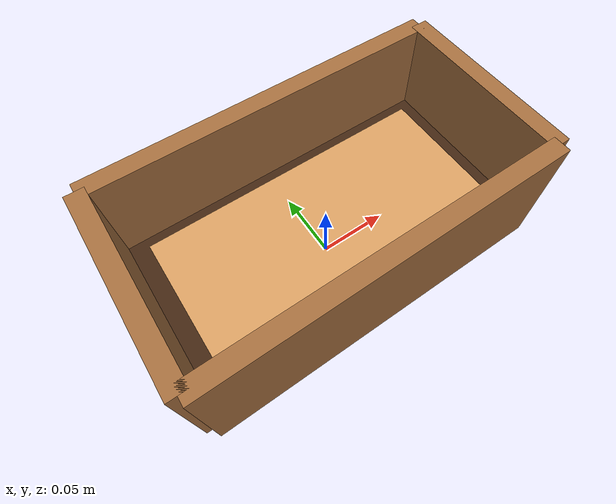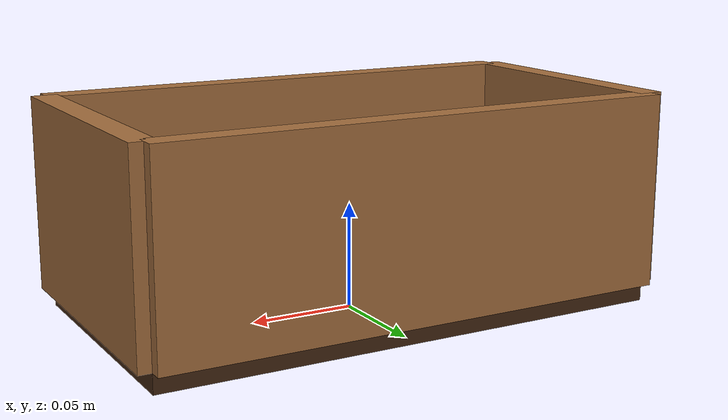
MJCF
<mujoco model="utensil_box">
  <worldbody>
    <body>
      <body name="object">
        <site name="contain_region" type="box" pos="0 0 0.058"
              quat="1 0 0 0" size="0.102 0.048 0.036" rgba="0 0 0 0"/>
        <geom name="wood_bottom" type="box" pos="0 0 0.019"
              size="0.122 0.064 0.017" rgba="0.26 0.15 0.07 1"
              density="5000" friction="1.5 0.02 0.001"
              solimp="0.99 0.99 0.001" solref="0.005 1" group="0"/>
        <geom name="wood_bottom_visual" type="box" pos="0 0 0.019"
              size="0.122 0.064 0.017" rgba="0.26 0.15 0.07 1"
              contype="0" conaffinity="0" group="1"/>
        <geom name="inner_floor_visual" type="box" pos="0 0 0.038"
              size="0.104 0.048 0.004" rgba="0.84 0.62 0.38 1"
              contype="0" conaffinity="0" group="1"/>
        <geom name="left_wall" type="box" pos="-0.122 0 0.056"
              size="0.006 0.064 0.045" rgba="0.64 0.43 0.24 1"
              density="5000" friction="1.5 0.02 0.001"
              solimp="0.99 0.99 0.001" solref="0.005 1" group="0"/>
        <geom name="right_wall" type="box" pos="0.122 0 0.056"
              size="0.006 0.064 0.045" rgba="0.64 0.43 0.24 1"
              density="5000" friction="1.5 0.02 0.001"
              solimp="0.99 0.99 0.001" solref="0.005 1" group="0"/>
        <geom name="front_wall" type="box" pos="0 -0.064 0.056"
              size="0.122 0.006 0.045" rgba="0.64 0.43 0.24 1"
              density="5000" friction="1.5 0.02 0.001"
              solimp="0.99 0.99 0.001" solref="0.005 1" group="0"/>
        <geom name="back_wall" type="box" pos="0 0.064 0.056"
              size="0.122 0.006 0.045" rgba="0.64 0.43 0.24 1"
              density="5000" friction="1.5 0.02 0.001"
              solimp="0.99 0.99 0.001" solref="0.005 1" group="0"/>
        <geom name="left_wall_visual" type="box" pos="-0.122 0 0.056"
              size="0.006 0.064 0.045" rgba="0.64 0.43 0.24 1"
              contype="0" conaffinity="0" group="1"/>
        <geom name="right_wall_visual" type="box" pos="0.122 0 0.056"
              size="0.006 0.064 0.045" rgba="0.64 0.43 0.24 1"
              contype="0" conaffinity="0" group="1"/>
        <geom name="front_wall_visual" type="box" pos="0 -0.064 0.056"
              size="0.122 0.006 0.045" rgba="0.64 0.43 0.24 1"
              contype="0" conaffinity="0" group="1"/>
        <geom name="back_wall_visual" type="box" pos="0 0.064 0.056"
              size="0.122 0.006 0.045" rgba="0.64 0.43 0.24 1"
              contype="0" conaffinity="0" group="1"/>
      </body>
      <site name="bottom_site" pos="0 0 -0.004" size="0.003" rgba="0 0 0 0"/>
      <site name="top_site" pos="0 0 0.102" size="0.003" rgba="0 0 0 0"/>
      <site name="horizontal_radius_site" pos="0.070 0 0.062"
            size="0.003" rgba="0 0 0 0"/>
    </body>
  </worldbody>
</mujoco>
